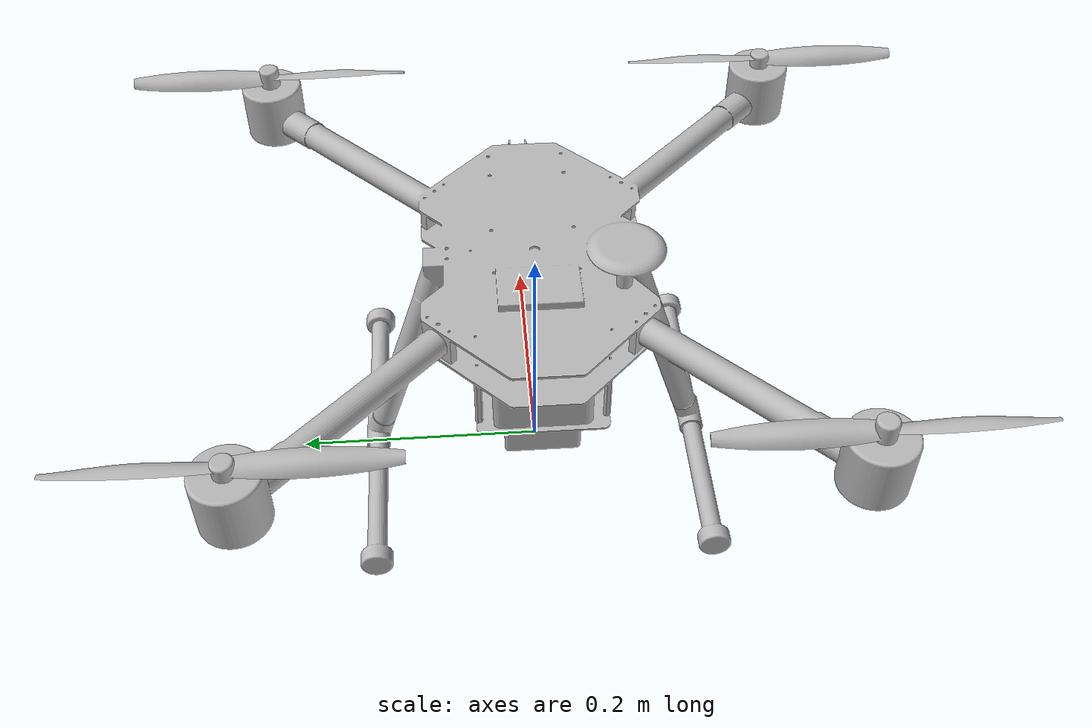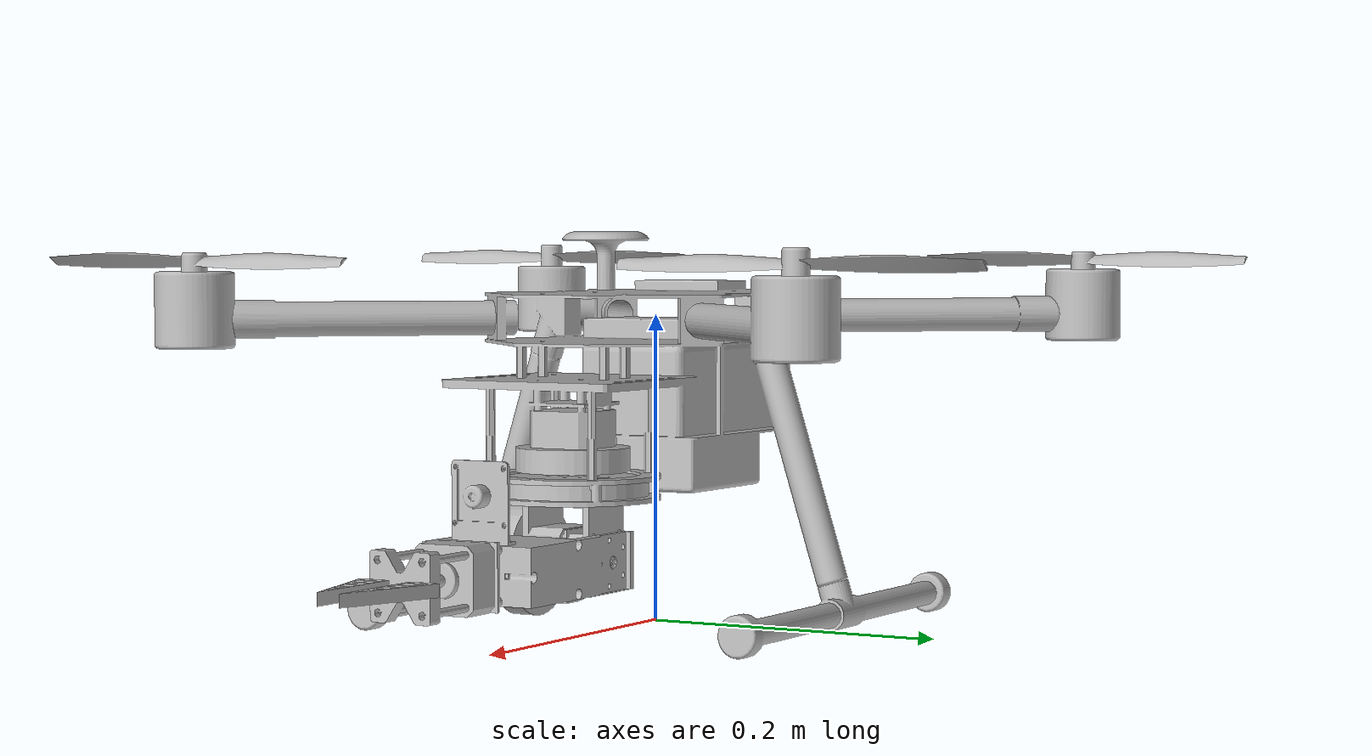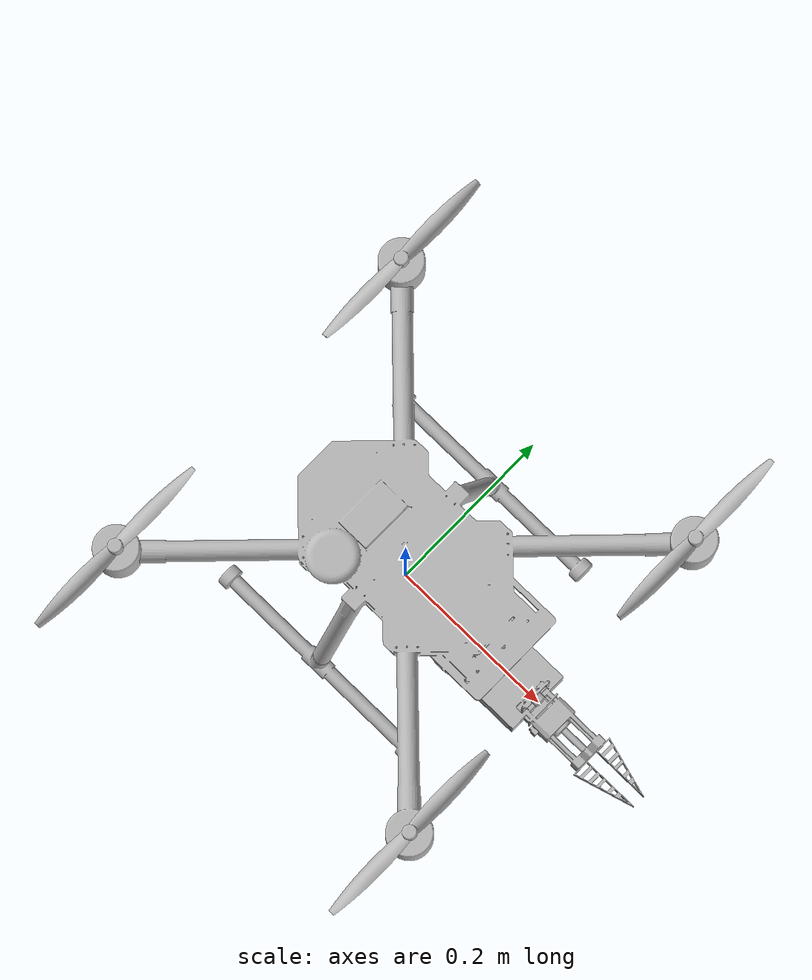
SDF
<sdf version='1.7'>
  <model name='uam_v4'>
    <link name='base_link'>
      <inertial>
        <pose>0.009748 -0.000252 0.148636 0 -0 0</pose>
        <mass>3.48917</mass>
        <inertia>
          <ixx>0.043079</ixx>
          <ixy>-0.00014081</ixy>
          <ixz>0.00104499</ixz>
          <iyy>0.049767</iyy>
          <iyz>0.00015485</iyz>
          <izz>0.072791</izz>
        </inertia>
      </inertial>
      <collision name='base_link_collision'>
        <pose>0 0 0 0 -0 0</pose>
        <geometry>
          <mesh>
            <scale>1 1 1</scale>
            <uri>model://uam_v4/meshes/base_link.STL</uri>
          </mesh>
        </geometry>
      </collision>
      <visual name='base_link_visual'>
        <pose>0 0 0 0 -0 0</pose>
        <geometry>
          <mesh>
            <scale>1 1 1</scale>
            <uri>model://uam_v4/meshes/base_link.STL</uri>
          </mesh>
        </geometry>
      </visual>
    </link>
    <joint name='arm_joint1' type='revolute'>
      <pose relative_to='base_link'>0.104 0 0.101941 3.14159 -0 0</pose>
      <parent>base_link</parent>
      <child>arm_link1</child>
      <axis>
        <xyz>0 0 1</xyz>
        <limit>
          <lower>-1e+16</lower>
          <upper>1e+16</upper>
        </limit>
        <dynamics>
          <spring_reference>0</spring_reference>
          <spring_stiffness>0</spring_stiffness>
        </dynamics>
      </axis>
    </joint>
    <link name='arm_link1'>
      <pose relative_to='arm_joint1'>0 0 0 0 -0 0</pose>
      <inertial>
        <pose>5.4e-05 0.008531 0.039163 0 -0 0</pose>
        <mass>0.225273</mass>
        <inertia>
          <ixx>0.00020971</ixx>
          <ixy>5e-08</ixy>
          <ixz>-1.7e-07</ixz>
          <iyy>0.00019995</iyy>
          <iyz>-2.66e-05</iyz>
          <izz>0.0001501</izz>
        </inertia>
      </inertial>
      <collision name='arm_link1_collision'>
        <pose>0 0 0 0 -0 0</pose>
        <geometry>
          <mesh>
            <scale>1 1 1</scale>
            <uri>model://uam_v4/meshes/arm_link1.STL</uri>
          </mesh>
        </geometry>
      </collision>
      <visual name='arm_link1_visual'>
        <pose>0 0 0 0 -0 0</pose>
        <geometry>
          <mesh>
            <scale>1 1 1</scale>
            <uri>model://uam_v4/meshes/arm_link1.STL</uri>
          </mesh>
        </geometry>
      </visual>
    </link>
    <joint name='arm_joint2' type='revolute'>
      <pose relative_to='arm_link1'>0 0 0.053 -1.5708 0 0</pose>
      <parent>arm_link1</parent>
      <child>arm_link2</child>
      <axis>
        <xyz>0 0 1</xyz>
        <limit>
          <lower>-1e+16</lower>
          <upper>1e+16</upper>
        </limit>
        <dynamics>
          <spring_reference>0</spring_reference>
          <spring_stiffness>0</spring_stiffness>
        </dynamics>
      </axis>
    </joint>
    <link name='arm_link2'>
      <pose relative_to='arm_joint2'>0 0 0 0 -0 0</pose>
      <inertial>
        <pose>0.089848 0.000668 0.007175 0 -0 0</pose>
        <mass>0.309499</mass>
        <inertia>
          <ixx>0.000171953</ixx>
          <ixy>-1.08129e-06</ixy>
          <ixz>-1.35887e-06</ixz>
          <iyy>0.000606165</iyy>
          <iyz>-2.14148e-08</iyz>
          <izz>0.000525417</izz>
        </inertia>
      </inertial>
      <collision name='arm_link2_collision'>
        <pose>0 0 0 0 -0 0</pose>
        <geometry>
          <mesh>
            <scale>1 1 1</scale>
            <uri>model://uam_v4/meshes/arm_link2.STL</uri>
          </mesh>
        </geometry>
      </collision>
      <collision name='arm_link2_fixed_joint_lump__camera_link_collision_1'>
        <pose>0.09 0.018 0.007 0 -0 0</pose>
        <geometry>
          <mesh>
            <scale>1 1 1</scale>
            <uri>model://uam_v4/meshes/camera_link.STL</uri>
          </mesh>
        </geometry>
      </collision>
      <visual name='arm_link2_visual'>
        <pose>0 0 0 0 -0 0</pose>
        <geometry>
          <mesh>
            <scale>1 1 1</scale>
            <uri>model://uam_v4/meshes/arm_link2.STL</uri>
          </mesh>
        </geometry>
      </visual>
      <visual name='arm_link2_fixed_joint_lump__camera_link_visual_1'>
        <pose>0.09 0.018 0.007 0 -0 0</pose>
        <geometry>
          <mesh>
            <scale>1 1 1</scale>
            <uri>model://uam_v4/meshes/camera_link.STL</uri>
          </mesh>
        </geometry>
      </visual>
    </link>
    <joint name='left_hand_joint' type='prismatic'>
      <pose relative_to='arm_link2'>0.18 0.001 -0.0005 0 -0 0</pose>
      <parent>arm_link2</parent>
      <child>left_hand_link</child>
      <axis>
        <xyz>0 0 1</xyz>
        <limit>
          <lower>-0.01</lower>
          <upper>0.01</upper>
          <effort>0</effort>
          <velocity>0</velocity>
        </limit>
        <dynamics>
          <spring_reference>0</spring_reference>
          <spring_stiffness>0</spring_stiffness>
        </dynamics>
      </axis>
    </joint>
    <link name='left_hand_link'>
      <pose relative_to='left_hand_joint'>0 0 0 0 -0 0</pose>
      <inertial>
        <pose>0.025824 -0.001 -0.006337 0 -0 0</pose>
        <mass>0.00272625</mass>
        <inertia>
          <ixx>9e-08</ixx>
          <ixy>0</ixy>
          <ixz>-1.2e-07</ixz>
          <iyy>9.2e-07</iyy>
          <iyz>0</iyz>
          <izz>8.6e-07</izz>
        </inertia>
      </inertial>
      <collision name='left_hand_link_collision'>
        <pose>0 0 0 0 -0 0</pose>
        <geometry>
          <mesh>
            <scale>1 1 1</scale>
            <uri>model://uam_v4/meshes/left_hand_link.STL</uri>
          </mesh>
        </geometry>
      </collision>
      <visual name='left_hand_link_visual'>
        <pose>0 0 0 0 -0 0</pose>
        <geometry>
          <mesh>
            <scale>1 1 1</scale>
            <uri>model://uam_v4/meshes/left_hand_link.STL</uri>
          </mesh>
        </geometry>
      </visual>
    </link>
    <joint name='right_hand_joint' type='prismatic'>
      <pose relative_to='arm_link2'>0.18 0.001 0.0145 0 -0 0</pose>
      <parent>arm_link2</parent>
      <child>right_hand_link</child>
      <axis>
        <xyz>0 0 1</xyz>
        <limit>
          <lower>-0.01</lower>
          <upper>0.01</upper>
          <effort>0</effort>
          <velocity>0</velocity>
        </limit>
        <dynamics>
          <spring_reference>0</spring_reference>
          <spring_stiffness>0</spring_stiffness>
        </dynamics>
      </axis>
    </joint>
    <link name='right_hand_link'>
      <pose relative_to='right_hand_joint'>0 0 0 0 -0 0</pose>
      <inertial>
        <pose>0.025824 -0.001 0.006337 0 -0 0</pose>
        <mass>0.00272625</mass>
        <inertia>
          <ixx>9e-08</ixx>
          <ixy>0</ixy>
          <ixz>1.2e-07</ixz>
          <iyy>9.2e-07</iyy>
          <iyz>0</iyz>
          <izz>8.6e-07</izz>
        </inertia>
      </inertial>
      <collision name='right_hand_link_collision'>
        <pose>0 0 0 0 -0 0</pose>
        <geometry>
          <mesh>
            <scale>1 1 1</scale>
            <uri>model://uam_v4/meshes/right_hand_link.STL</uri>
          </mesh>
        </geometry>
      </collision>
      <visual name='right_hand_link_visual'>
        <pose>0 0 0 0 -0 0</pose>
        <geometry>
          <mesh>
            <scale>1 1 1</scale>
            <uri>model://uam_v4/meshes/right_hand_link.STL</uri>
          </mesh>
        </geometry>
      </visual>
    </link>
    <joint name='rotor_0_joint' type='revolute'>
      <pose relative_to='base_link'>0.211684 -0.211684 0.228941 0 -0 0</pose>
      <parent>base_link</parent>
      <child>rotor_0</child>
      <axis>
        <xyz>0 0 1</xyz>
        <limit>
          <lower>-1e+16</lower>
          <upper>1e+16</upper>
        </limit>
        <dynamics>
          <spring_reference>0</spring_reference>
          <spring_stiffness>0</spring_stiffness>
        </dynamics>
      </axis>
    </joint>
    <link name='rotor_0'>
      <pose relative_to='rotor_0_joint'>0 0 0 0 -0 0</pose>
      <inertial>
        <pose>0 0 0.007745 0 -0 0</pose>
        <mass>0.013</mass>
        <inertia>
          <ixx>4.374e-05</ixx>
          <ixy>-4.7e-07</ixy>
          <ixz>0</ixz>
          <iyy>2.6e-07</iyy>
          <iyz>0</iyz>
          <izz>4.387e-05</izz>
        </inertia>
      </inertial>
      <collision name='rotor_0_collision'>
        <pose>0 0 0 0 -0 0</pose>
        <geometry>
          <mesh>
            <scale>1 1 1</scale>
            <uri>model://uam_v4/meshes/rotor_0.STL</uri>
          </mesh>
        </geometry>
      </collision>
      <visual name='rotor_0_visual'>
        <pose>0 0 0 0 -0 0</pose>
        <geometry>
          <mesh>
            <scale>1 1 1</scale>
            <uri>model://uam_v4/meshes/rotor_0.STL</uri>
          </mesh>
        </geometry>
      </visual>
    </link>
    <joint name='rotor_1_joint' type='revolute'>
      <pose relative_to='base_link'>-0.211684 0.211684 0.228941 0 -0 0</pose>
      <parent>base_link</parent>
      <child>rotor_1</child>
      <axis>
        <xyz>0 0 1</xyz>
        <limit>
          <lower>-1e+16</lower>
          <upper>1e+16</upper>
        </limit>
        <dynamics>
          <spring_reference>0</spring_reference>
          <spring_stiffness>0</spring_stiffness>
        </dynamics>
      </axis>
    </joint>
    <link name='rotor_1'>
      <pose relative_to='rotor_1_joint'>0 0 0 0 -0 0</pose>
      <inertial>
        <pose>0 0 0.007745 0 -0 0</pose>
        <mass>0.013</mass>
        <inertia>
          <ixx>4.374e-05</ixx>
          <ixy>-4.7e-07</ixy>
          <ixz>0</ixz>
          <iyy>2.6e-07</iyy>
          <iyz>0</iyz>
          <izz>4.387e-05</izz>
        </inertia>
      </inertial>
      <collision name='rotor_1_collision'>
        <pose>0 0 0 0 -0 0</pose>
        <geometry>
          <mesh>
            <scale>1 1 1</scale>
            <uri>model://uam_v4/meshes/rotor_1.STL</uri>
          </mesh>
        </geometry>
      </collision>
      <visual name='rotor_1_visual'>
        <pose>0 0 0 0 -0 0</pose>
        <geometry>
          <mesh>
            <scale>1 1 1</scale>
            <uri>model://uam_v4/meshes/rotor_1.STL</uri>
          </mesh>
        </geometry>
      </visual>
    </link>
    <joint name='rotor_2_joint' type='revolute'>
      <pose relative_to='base_link'>0.211684 0.211684 0.228941 0 -0 0</pose>
      <parent>base_link</parent>
      <child>rotor_2</child>
      <axis>
        <xyz>0 0 1</xyz>
        <limit>
          <lower>-1e+16</lower>
          <upper>1e+16</upper>
        </limit>
        <dynamics>
          <spring_reference>0</spring_reference>
          <spring_stiffness>0</spring_stiffness>
        </dynamics>
      </axis>
    </joint>
    <link name='rotor_2'>
      <pose relative_to='rotor_2_joint'>0 0 0 0 -0 0</pose>
      <inertial>
        <pose>0 0 0.007945 0 -0 0</pose>
        <mass>0.013</mass>
        <inertia>
          <ixx>4.274e-05</ixx>
          <ixy>4.8e-07</ixy>
          <ixz>0</ixz>
          <iyy>2.8e-07</iyy>
          <iyz>0</iyz>
          <izz>4.286e-05</izz>
        </inertia>
      </inertial>
      <collision name='rotor_2_collision'>
        <pose>0 0 0 0 -0 0</pose>
        <geometry>
          <mesh>
            <scale>1 1 1</scale>
            <uri>model://uam_v4/meshes/rotor_2.STL</uri>
          </mesh>
        </geometry>
      </collision>
      <visual name='rotor_2_visual'>
        <pose>0 0 0 0 -0 0</pose>
        <geometry>
          <mesh>
            <scale>1 1 1</scale>
            <uri>model://uam_v4/meshes/rotor_2.STL</uri>
          </mesh>
        </geometry>
      </visual>
    </link>
    <joint name='rotor_3_joint' type='revolute'>
      <pose relative_to='base_link'>-0.211684 -0.211684 0.228941 0 -0 0</pose>
      <parent>base_link</parent>
      <child>rotor_3</child>
      <axis>
        <xyz>0 0 1</xyz>
        <limit>
          <lower>-1e+16</lower>
          <upper>1e+16</upper>
        </limit>
        <dynamics>
          <spring_reference>0</spring_reference>
          <spring_stiffness>0</spring_stiffness>
        </dynamics>
      </axis>
    </joint>
    <link name='rotor_3'>
      <pose relative_to='rotor_3_joint'>0 0 0 0 -0 0</pose>
      <inertial>
        <pose>0 0 0.007945 0 -0 0</pose>
        <mass>0.013</mass>
        <inertia>
          <ixx>4.274e-05</ixx>
          <ixy>4.8e-07</ixy>
          <ixz>0</ixz>
          <iyy>2.8e-07</iyy>
          <iyz>0</iyz>
          <izz>4.286e-05</izz>
        </inertia>
      </inertial>
      <collision name='rotor_3_collision'>
        <pose>0 0 0 0 -0 0</pose>
        <geometry>
          <mesh>
            <scale>1 1 1</scale>
            <uri>model://uam_v4/meshes/rotor_3.STL</uri>
          </mesh>
        </geometry>
      </collision>
      <visual name='rotor_3_visual'>
        <pose>0 0 0 0 -0 0</pose>
        <geometry>
          <mesh>
            <scale>1 1 1</scale>
            <uri>model://uam_v4/meshes/rotor_3.STL</uri>
          </mesh>
        </geometry>
      </visual>
    </link>
    <frame name='camera_joint' attached_to='arm_link2'>
      <pose>0.09 0.018 0.007 0 -0 0</pose>
    </frame>
    <frame name='camera_link' attached_to='camera_joint'/>
  </model>
</sdf>
